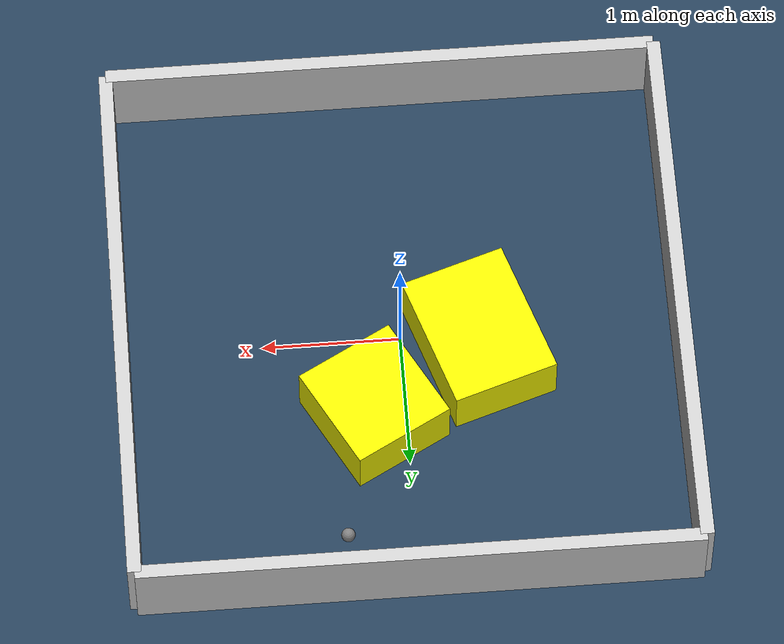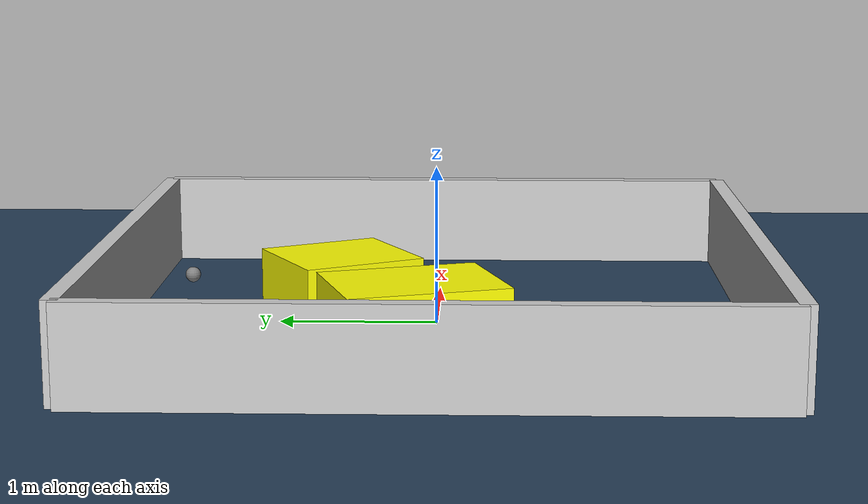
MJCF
<?xml version="1.0" ?>
<mujoco model="generated_environment">
  <option timestep="0.01" integrator="RK4" cone="elliptic"/>
  <default>
    <geom density="1"/>
  </default>
  <asset>
    <texture builtin="gradient" height="3072" rgb1="0.3 0.5 0.7" rgb2="0 0 0" type="skybox" width="512"/>
    <texture builtin="checker" height="300" mark="edge" markrgb="0.8 0.8 0.8" name="groundplane" rgb1="0.2 0.3 0.4" rgb2="0.1 0.2 0.3" type="2d" width="300"/>
    <material name="groundplane" reflectance="0.2" texrepeat="5 5" texture="groundplane" texuniform="true"/>
    <material name="robot" rgba="0.0 1.0 0.0 1"/>
  </asset>
  <worldbody>
    <light dir="0 0 -1" directional="true" pos="0 0 1.5"/>
    <geom condim="4" friction="1.0 0.005 0.001" material="groundplane" name="floor" size="0 0 0.05" type="plane"/>
    <body name="walls">
      <geom name="wall_1" condim="4" pos="-2.0 0.0 0.3" rgba="0.800000011920929 0.800000011920929 0.800000011920929 1.0" size="0.05 2.0 0.3" type="box"/>
      <geom name="wall_2" condim="4" pos="2.0 0.0 0.3" rgba="0.800000011920929 0.800000011920929 0.800000011920929 1.0" size="0.05 2.0 0.3" type="box"/>
      <geom name="wall_3" condim="4" pos="0.0 -2.0 0.3" rgba="0.800000011920929 0.800000011920929 0.800000011920929 1.0" size="2.0 0.05 0.3" type="box"/>
      <geom name="wall_4" condim="4" pos="0.0 2.0 0.3" rgba="0.800000011920929 0.800000011920929 0.800000011920929 1.0" size="2.0 0.05 0.3" type="box"/>
    </body>
    <body name="robot">
      <joint name="joint_x" type="slide" pos="0 0 0" axis="1 0 0"/>
      <joint name="joint_y" type="slide" pos="0 0 0" axis="0 1 0"/>
      <geom name="robot" type="sphere" pos="0.48579510765376144 1.6306435864539388 0.2" size="0.05" mass="5." friction="1.0 0.005 0.0001" condim="4"/>
      <site name="sensor_ball"/>
    </body>
    <body name="obstacle_1_movable">
      <geom name="obstacle_1_movable" condim="4" pos="0.22985905033229725 0.621252732954855 0.2" euler="0 0 298.6533770679642" friction="1.0 0.005 0.001" rgba="1 1 0 1" size="0.4018963724058261 0.3793392534578779 0.2" type="box" mass="0.1"/>
      <joint type="free"/>
    </body>
    <body name="obstacle_2_movable">
      <geom name="obstacle_2_movable" condim="4" pos="-0.5565086299579283 0.12681640066305389 0.2" euler="0 0 198.14741747425887" friction="1.0 0.005 0.001" rgba="1 1 0 1" size="0.38791323217808377 0.5109788281734695 0.2" type="box" mass="0.1"/>
      <joint type="free"/>
    </body>
  </worldbody>
  <actuator>
    <motor name="actuator_x" joint="joint_x" gear="1" ctrlrange="-1 1"/>
    <motor name="actuator_y" joint="joint_y" gear="1" ctrlrange="-1 1"/>
  </actuator>
</mujoco>
